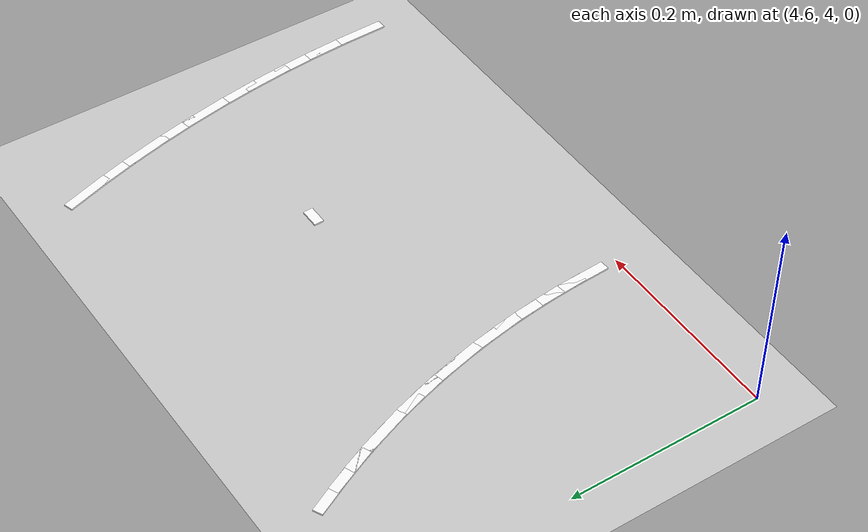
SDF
<sdf version="1.7">
 <world name="default">
  <model name="ground_plane">
   <static>1</static>
   <link name="link">
    <collision name="collision">
     <geometry><plane><normal>0 0 1</normal><size>100 100</size></plane></geometry>
     <surface>
      <contact><collide_bitmask>65535</collide_bitmask></contact>
      <friction><ode><mu>100</mu><mu2>50</mu2></ode></friction>
     </surface>
    </collision>
    <visual name="visual">
     <cast_shadows>0</cast_shadows>
     <geometry><plane><normal>0 0 1</normal><size>100 100</size></plane></geometry>
     <material>
      <script><uri>file://media/materials/scripts/gazebo.material</uri><name>Gazebo/Grey</name></script>
     </material>
    </visual>
   </link>
  </model>
  <model name="lane_line_left_149">
   <static>1</static>
   <link name="link">
    <pose>0 0 -0.004 0 -0 0</pose>
    <visual name="visual">
     <geometry><box><size>0.02 0.01 0.01</size></box></geometry>
     <material><ambient>1 1 1 1</ambient><diffuse>1 1 1 1</diffuse></material>
    </visual>
    <collision name="collision"><geometry><box><size>0.02 0.01 0.01</size></box></geometry></collision>
   </link>
   <pose>5 4.2 0 0 -0 0</pose>
  </model>
  <model name="lane_line_right_150">
   <static>1</static>
   <link name="link">
    <pose>0 0 -0.004 0 -0 0</pose>
    <visual name="visual">
     <geometry><box><size>0.0521 0.01 0.01</size></box></geometry>
     <material><ambient>1 1 1 1</ambient><diffuse>1 1 1 1</diffuse></material>
    </visual>
    <collision name="collision"><geometry><box><size>0.0521 0.01 0.01</size></box></geometry></collision>
   </link>
   <pose>5.19972 4.01923 0 0 -0 1.58682</pose>
  </model>
  <model name="lane_line_left_151">
   <static>1</static>
   <link name="link">
    <pose>0 0 -0.004 0 -0 0</pose>
    <visual name="visual">
     <geometry><box><size>0.0521 0.01 0.01</size></box></geometry>
     <material><ambient>1 1 1 1</ambient><diffuse>1 1 1 1</diffuse></material>
    </visual>
    <collision name="collision"><geometry><box><size>0.0521 0.01 0.01</size></box></geometry></collision>
   </link>
   <pose>4.79895 4.03845 0 0 -0 1.61888</pose>
  </model>
  <model name="lane_line_right_151">
   <static>1</static>
   <link name="link">
    <pose>0 0 -0.004 0 -0 0</pose>
    <visual name="visual">
     <geometry><box><size>0.0521 0.01 0.01</size></box></geometry>
     <material><ambient>1 1 1 1</ambient><diffuse>1 1 1 1</diffuse></material>
    </visual>
    <collision name="collision"><geometry><box><size>0.0521 0.01 0.01</size></box></geometry></collision>
   </link>
   <pose>5.19848 4.05767 0 0 -0 1.61888</pose>
  </model>
  <model name="lane_line_left_152">
   <static>1</static>
   <link name="link">
    <pose>0 0 -0.004 0 -0 0</pose>
    <visual name="visual">
     <geometry><box><size>0.0521 0.01 0.01</size></box></geometry>
     <material><ambient>1 1 1 1</ambient><diffuse>1 1 1 1</diffuse></material>
    </visual>
    <collision name="collision"><geometry><box><size>0.0521 0.01 0.01</size></box></geometry></collision>
   </link>
   <pose>4.7973 4.06404 0 0 -0 1.65094</pose>
  </model>
  <model name="lane_line_right_152">
   <static>1</static>
   <link name="link">
    <pose>0 0 -0.004 0 -0 0</pose>
    <visual name="visual">
     <geometry><box><size>0.0521 0.01 0.01</size></box></geometry>
     <material><ambient>1 1 1 1</ambient><diffuse>1 1 1 1</diffuse></material>
    </visual>
    <collision name="collision"><geometry><box><size>0.0521 0.01 0.01</size></box></geometry></collision>
   </link>
   <pose>5.19602 4.09606 0 0 -0 1.65094</pose>
  </model>
  <model name="lane_line_left_153">
   <static>1</static>
   <link name="link">
    <pose>0 0 -0.004 0 -0 0</pose>
    <visual name="visual">
     <geometry><box><size>0.0521 0.01 0.01</size></box></geometry>
     <material><ambient>1 1 1 1</ambient><diffuse>1 1 1 1</diffuse></material>
    </visual>
    <collision name="collision"><geometry><box><size>0.0521 0.01 0.01</size></box></geometry></collision>
   </link>
   <pose>4.79484 4.08956 0 0 -0 1.683</pose>
  </model>
  <model name="lane_line_right_153">
   <static>1</static>
   <link name="link">
    <pose>0 0 -0.004 0 -0 0</pose>
    <visual name="visual">
     <geometry><box><size>0.0521 0.01 0.01</size></box></geometry>
     <material><ambient>1 1 1 1</ambient><diffuse>1 1 1 1</diffuse></material>
    </visual>
    <collision name="collision"><geometry><box><size>0.0521 0.01 0.01</size></box></geometry></collision>
   </link>
   <pose>5.19233 4.13434 0 0 -0 1.683</pose>
  </model>
  <model name="lane_line_left_154">
   <static>1</static>
   <link name="link">
    <pose>0 0 -0.004 0 -0 0</pose>
    <visual name="visual">
     <geometry><box><size>0.0521 0.01 0.01</size></box></geometry>
     <material><ambient>1 1 1 1</ambient><diffuse>1 1 1 1</diffuse></material>
    </visual>
    <collision name="collision"><geometry><box><size>0.0521 0.01 0.01</size></box></geometry></collision>
   </link>
   <pose>4.79156 4.11499 0 0 -0 1.71505</pose>
  </model>
  <model name="lane_line_right_154">
   <static>1</static>
   <link name="link">
    <pose>0 0 -0.004 0 -0 0</pose>
    <visual name="visual">
     <geometry><box><size>0.0521 0.01 0.01</size></box></geometry>
     <material><ambient>1 1 1 1</ambient><diffuse>1 1 1 1</diffuse></material>
    </visual>
    <collision name="collision"><geometry><box><size>0.0521 0.01 0.01</size></box></geometry></collision>
   </link>
   <pose>5.18741 4.17249 0 0 -0 1.71505</pose>
  </model>
  <model name="lane_line_left_155">
   <static>1</static>
   <link name="link">
    <pose>0 0 -0.004 0 -0 0</pose>
    <visual name="visual">
     <geometry><box><size>0.0521 0.01 0.01</size></box></geometry>
     <material><ambient>1 1 1 1</ambient><diffuse>1 1 1 1</diffuse></material>
    </visual>
    <collision name="collision"><geometry><box><size>0.0521 0.01 0.01</size></box></geometry></collision>
   </link>
   <pose>4.78747 4.1403 0 0 -0 1.74711</pose>
  </model>
  <model name="lane_line_right_155">
   <static>1</static>
   <link name="link">
    <pose>0 0 -0.004 0 -0 0</pose>
    <visual name="visual">
     <geometry><box><size>0.0521 0.01 0.01</size></box></geometry>
     <material><ambient>1 1 1 1</ambient><diffuse>1 1 1 1</diffuse></material>
    </visual>
    <collision name="collision"><geometry><box><size>0.0521 0.01 0.01</size></box></geometry></collision>
   </link>
   <pose>5.18127 4.21046 0 0 -0 1.74711</pose>
  </model>
  <model name="lane_line_left_156">
   <static>1</static>
   <link name="link">
    <pose>0 0 -0.004 0 -0 0</pose>
    <visual name="visual">
     <geometry><box><size>0.0521 0.01 0.01</size></box></geometry>
     <material><ambient>1 1 1 1</ambient><diffuse>1 1 1 1</diffuse></material>
    </visual>
    <collision name="collision"><geometry><box><size>0.0521 0.01 0.01</size></box></geometry></collision>
   </link>
   <pose>4.78257 4.16547 0 0 -0 1.77917</pose>
  </model>
  <model name="lane_line_right_156">
   <static>1</static>
   <link name="link">
    <pose>0 0 -0.004 0 -0 0</pose>
    <visual name="visual">
     <geometry><box><size>0.0521 0.01 0.01</size></box></geometry>
     <material><ambient>1 1 1 1</ambient><diffuse>1 1 1 1</diffuse></material>
    </visual>
    <collision name="collision"><geometry><box><size>0.0521 0.01 0.01</size></box></geometry></collision>
   </link>
   <pose>5.17392 4.24821 0 0 -0 1.77917</pose>
  </model>
  <model name="lane_line_left_157">
   <static>1</static>
   <link name="link">
    <pose>0 0 -0.004 0 -0 0</pose>
    <visual name="visual">
     <geometry><box><size>0.0521 0.01 0.01</size></box></geometry>
     <material><ambient>1 1 1 1</ambient><diffuse>1 1 1 1</diffuse></material>
    </visual>
    <collision name="collision"><geometry><box><size>0.0521 0.01 0.01</size></box></geometry></collision>
   </link>
   <pose>4.77686 4.19046 0 0 -0 1.81122</pose>
  </model>
  <model name="lane_line_right_157">
   <static>1</static>
   <link name="link">
    <pose>0 0 -0.004 0 -0 0</pose>
    <visual name="visual">
     <geometry><box><size>0.0521 0.01 0.01</size></box></geometry>
     <material><ambient>1 1 1 1</ambient><diffuse>1 1 1 1</diffuse></material>
    </visual>
    <collision name="collision"><geometry><box><size>0.0521 0.01 0.01</size></box></geometry></collision>
   </link>
   <pose>5.16536 4.28571 0 0 -0 1.81122</pose>
  </model>
  <model name="lane_line_left_158">
   <static>1</static>
   <link name="link">
    <pose>0 0 -0.004 0 -0 0</pose>
    <visual name="visual">
     <geometry><box><size>0.0521 0.01 0.01</size></box></geometry>
     <material><ambient>1 1 1 1</ambient><diffuse>1 1 1 1</diffuse></material>
    </visual>
    <collision name="collision"><geometry><box><size>0.0521 0.01 0.01</size></box></geometry></collision>
   </link>
   <pose>4.77036 4.21527 0 0 -0 1.84328</pose>
  </model>
  <model name="lane_line_right_158">
   <static>1</static>
   <link name="link">
    <pose>0 0 -0.004 0 -0 0</pose>
    <visual name="visual">
     <geometry><box><size>0.0521 0.01 0.01</size></box></geometry>
     <material><ambient>1 1 1 1</ambient><diffuse>1 1 1 1</diffuse></material>
    </visual>
    <collision name="collision"><geometry><box><size>0.0521 0.01 0.01</size></box></geometry></collision>
   </link>
   <pose>5.1556 4.32292 0 0 -0 1.84328</pose>
  </model>
  <model name="lane_line_left_159">
   <static>1</static>
   <link name="link">
    <pose>0 0 -0.004 0 -0 0</pose>
    <visual name="visual">
     <geometry><box><size>0.0521 0.01 0.01</size></box></geometry>
     <material><ambient>1 1 1 1</ambient><diffuse>1 1 1 1</diffuse></material>
    </visual>
    <collision name="collision"><geometry><box><size>0.0521 0.01 0.01</size></box></geometry></collision>
   </link>
   <pose>4.76306 4.23985 0 0 -0 1.87534</pose>
  </model>
  <model name="lane_line_right_159">
   <static>1</static>
   <link name="link">
    <pose>0 0 -0.004 0 -0 0</pose>
    <visual name="visual">
     <geometry><box><size>0.0521 0.01 0.01</size></box></geometry>
     <material><ambient>1 1 1 1</ambient><diffuse>1 1 1 1</diffuse></material>
    </visual>
    <collision name="collision"><geometry><box><size>0.0521 0.01 0.01</size></box></geometry></collision>
   </link>
   <pose>5.14466 4.35979 0 0 -0 1.87534</pose>
  </model>
  <model name="lane_line_left_160">
   <static>1</static>
   <link name="link">
    <pose>0 0 -0.004 0 -0 0</pose>
    <visual name="visual">
     <geometry><box><size>0.0521 0.01 0.01</size></box></geometry>
     <material><ambient>1 1 1 1</ambient><diffuse>1 1 1 1</diffuse></material>
    </visual>
    <collision name="collision"><geometry><box><size>0.0521 0.01 0.01</size></box></geometry></collision>
   </link>
   <pose>4.75499 4.26418 0 0 -0 1.9074</pose>
  </model>
  <model name="lane_line_left_161">
   <static>1</static>
   <link name="link">
    <pose>0 0 -0.004 0 -0 0</pose>
    <visual name="visual">
     <geometry><box><size>0.0521 0.01 0.01</size></box></geometry>
     <material><ambient>1 1 1 1</ambient><diffuse>1 1 1 1</diffuse></material>
    </visual>
    <collision name="collision"><geometry><box><size>0.0521 0.01 0.01</size></box></geometry></collision>
   </link>
   <pose>4.74613 4.28824 0 0 -0 1.93945</pose>
  </model>
  <model name="lane_line_left_162">
   <static>1</static>
   <link name="link">
    <pose>0 0 -0.004 0 -0 0</pose>
    <visual name="visual">
     <geometry><box><size>0.0521 0.01 0.01</size></box></geometry>
     <material><ambient>1 1 1 1</ambient><diffuse>1 1 1 1</diffuse></material>
    </visual>
    <collision name="collision"><geometry><box><size>0.0521 0.01 0.01</size></box></geometry></collision>
   </link>
   <pose>4.73651 4.31201 0 0 -0 1.97151</pose>
  </model>
  <model name="lane_line_left_163">
   <static>1</static>
   <link name="link">
    <pose>0 0 -0.004 0 -0 0</pose>
    <visual name="visual">
     <geometry><box><size>0.0521 0.01 0.01</size></box></geometry>
     <material><ambient>1 1 1 1</ambient><diffuse>1 1 1 1</diffuse></material>
    </visual>
    <collision name="collision"><geometry><box><size>0.0521 0.01 0.01</size></box></geometry></collision>
   </link>
   <pose>4.72613 4.33546 0 0 -0 2.00357</pose>
  </model>
  <model name="lane_line_left_164">
   <static>1</static>
   <link name="link">
    <pose>0 0 -0.004 0 -0 0</pose>
    <visual name="visual">
     <geometry><box><size>0.0521 0.01 0.01</size></box></geometry>
     <material><ambient>1 1 1 1</ambient><diffuse>1 1 1 1</diffuse></material>
    </visual>
    <collision name="collision"><geometry><box><size>0.0521 0.01 0.01</size></box></geometry></collision>
   </link>
   <pose>4.715 4.35856 0 0 -0 2.03562</pose>
  </model>
 </world>
</sdf>
